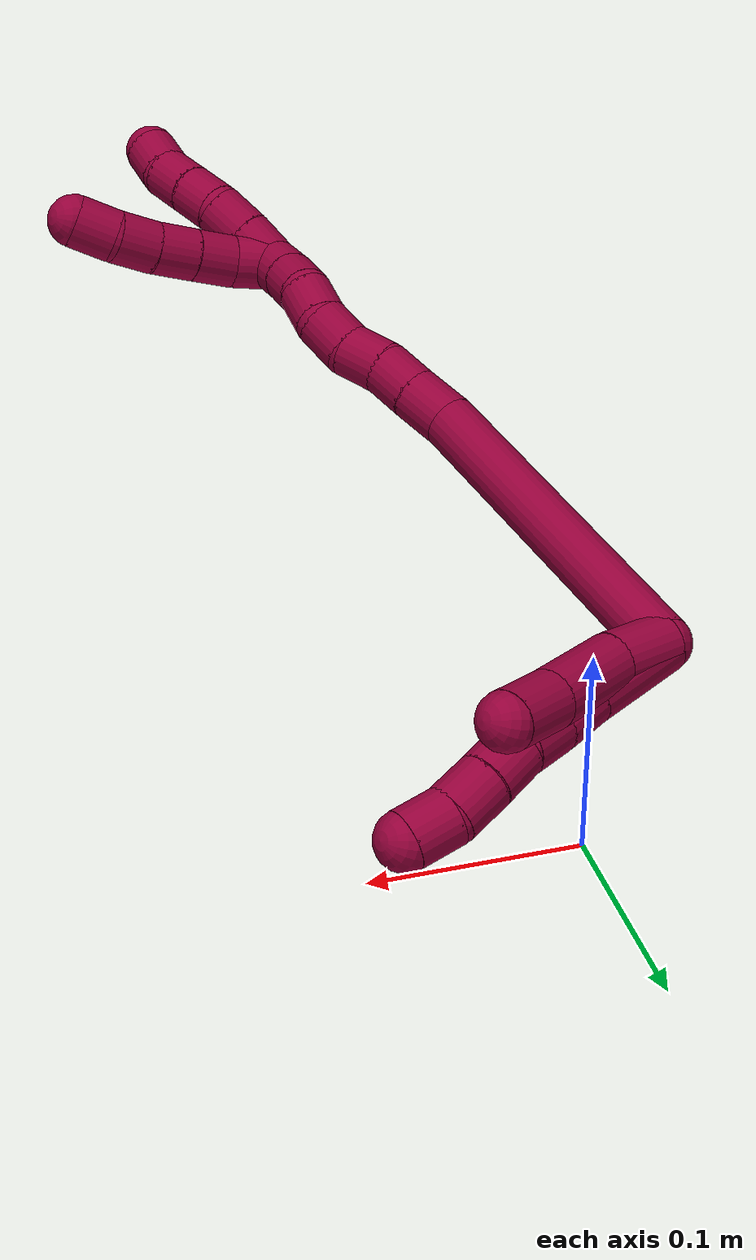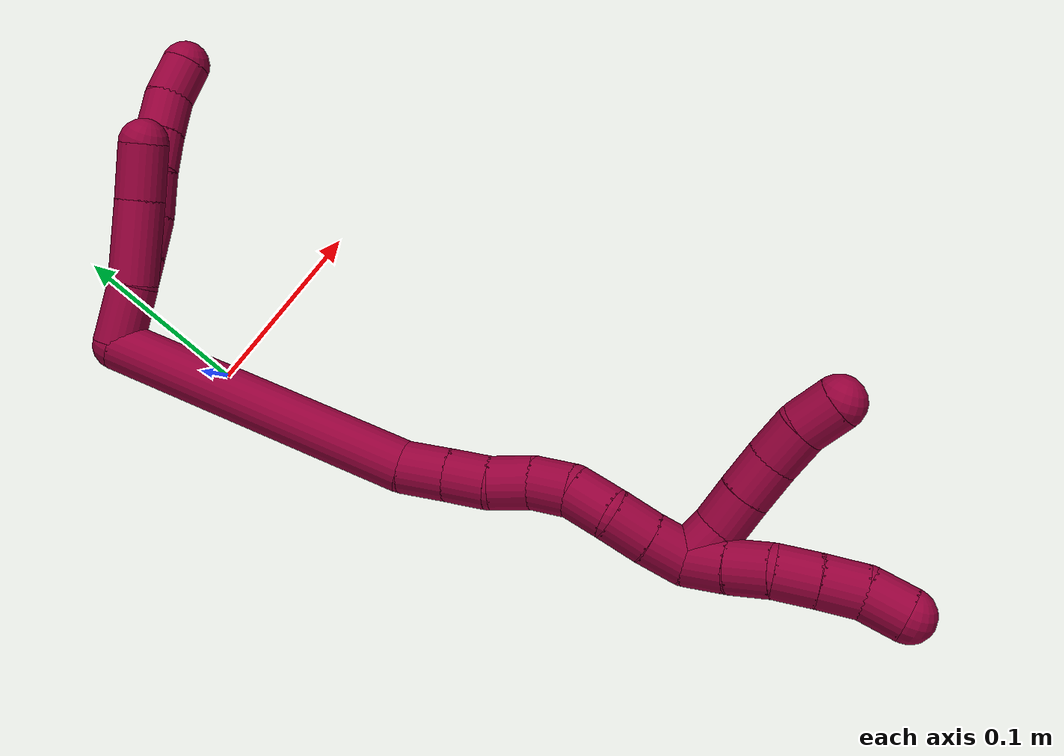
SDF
<sdf version="1.7">
 <world name="default">
  <model name="8">
   <static>0</static>
   <link name="8">
    <collision name="collision-cylinder-e_1_2_8">
     <pose>0.010368 0.004221 0.019769 -0.210367 0.473905 -0.050978</pose>
     <geometry><cylinder><radius>0.0125</radius><length>0.045438</length></cylinder></geometry>
     <surface>
      <friction><ode><mu>1.16</mu><mu2>1.16</mu2><slip1>0</slip1><slip2>0</slip2></ode></friction>
      <contact><ode><kp>1e+06</kp><kd>1</kd><max_vel>0</max_vel><min_depth>0.001</min_depth></ode></contact>
     </surface>
    </collision>
    <visual name="visual-cylinder-e_1_2_8">
     <pose>0.010368 0.004221 0.019769 -0.210367 0.473905 -0.050978</pose>
     <geometry><cylinder><radius>0.0125</radius><length>0.045438</length></cylinder></geometry>
     <material><ambient>0.584314 0 0.227451 1</ambient></material>
    </visual>
    <collision name="collision-cylinder-e_2_8_9">
     <pose>0.02608 0.010693 0.048219 -0.253631 0.53739 -0.070186</pose>
     <geometry><cylinder><radius>0.0125</radius><length>0.020878</length></cylinder></geometry>
     <surface>
      <friction><ode><mu>1.16</mu><mu2>1.16</mu2><slip1>0</slip1><slip2>0</slip2></ode></friction>
      <contact><ode><kp>1e+06</kp><kd>1</kd><max_vel>0</max_vel><min_depth>0.001</min_depth></ode></contact>
     </surface>
    </collision>
    <visual name="visual-cylinder-e_2_8_9">
     <pose>0.02608 0.010693 0.048219 -0.253631 0.53739 -0.070186</pose>
     <geometry><cylinder><radius>0.0125</radius><length>0.020878</length></cylinder></geometry>
     <material><ambient>0.584314 0 0.227451 1</ambient></material>
    </visual>
    <collision name="collision-cylinder-e_3_9_10">
     <pose>0.034757 0.016322 0.067324 -0.313443 0.295335 -0.047002</pose>
     <geometry><cylinder><radius>0.0125</radius><length>0.022909</length></cylinder></geometry>
     <surface>
      <friction><ode><mu>1.16</mu><mu2>1.16</mu2><slip1>0</slip1><slip2>0</slip2></ode></friction>
      <contact><ode><kp>1e+06</kp><kd>1</kd><max_vel>0</max_vel><min_depth>0.001</min_depth></ode></contact>
     </surface>
    </collision>
    <visual name="visual-cylinder-e_3_9_10">
     <pose>0.034757 0.016322 0.067324 -0.313443 0.295335 -0.047002</pose>
     <geometry><cylinder><radius>0.0125</radius><length>0.022909</length></cylinder></geometry>
     <material><ambient>0.584314 0 0.227451 1</ambient></material>
    </visual>
    <collision name="collision-cylinder-e_4_10_11">
     <pose>0.043649 0.02258 0.085552 -0.35356 0.589058 -0.108279</pose>
     <geometry><cylinder><radius>0.0125</radius><length>0.020007</length></cylinder></geometry>
     <surface>
      <friction><ode><mu>1.16</mu><mu2>1.16</mu2><slip1>0</slip1><slip2>0</slip2></ode></friction>
      <contact><ode><kp>1e+06</kp><kd>1</kd><max_vel>0</max_vel><min_depth>0.001</min_depth></ode></contact>
     </surface>
    </collision>
    <visual name="visual-cylinder-e_4_10_11">
     <pose>0.043649 0.02258 0.085552 -0.35356 0.589058 -0.108279</pose>
     <geometry><cylinder><radius>0.0125</radius><length>0.020007</length></cylinder></geometry>
     <material><ambient>0.584314 0 0.227451 1</ambient></material>
    </visual>
    <collision name="collision-cylinder-e_5_11_12">
     <pose>0.055298 0.027885 0.101384 -0.293249 0.628151 -0.09587</pose>
     <geometry><cylinder><radius>0.0125</radius><length>0.02073</length></cylinder></geometry>
     <surface>
      <friction><ode><mu>1.16</mu><mu2>1.16</mu2><slip1>0</slip1><slip2>0</slip2></ode></friction>
      <contact><ode><kp>1e+06</kp><kd>1</kd><max_vel>0</max_vel><min_depth>0.001</min_depth></ode></contact>
     </surface>
    </collision>
    <visual name="visual-cylinder-e_5_11_12">
     <pose>0.055298 0.027885 0.101384 -0.293249 0.628151 -0.09587</pose>
     <geometry><cylinder><radius>0.0125</radius><length>0.02073</length></cylinder></geometry>
     <material><ambient>0.584314 0 0.227451 1</ambient></material>
    </visual>
    <collision name="collision-cylinder-e_6_12_6">
     <pose>0.066897 0.030322 0.117782 -0.001551 0.582113 -0.000464</pose>
     <geometry><cylinder><radius>0.0125</radius><length>0.020038</length></cylinder></geometry>
     <surface>
      <friction><ode><mu>1.16</mu><mu2>1.16</mu2><slip1>0</slip1><slip2>0</slip2></ode></friction>
      <contact><ode><kp>1e+06</kp><kd>1</kd><max_vel>0</max_vel><min_depth>0.001</min_depth></ode></contact>
     </surface>
    </collision>
    <visual name="visual-cylinder-e_6_12_6">
     <pose>0.066897 0.030322 0.117782 -0.001551 0.582113 -0.000464</pose>
     <geometry><cylinder><radius>0.0125</radius><length>0.020038</length></cylinder></geometry>
     <material><ambient>0.584314 0 0.227451 1</ambient></material>
    </visual>
    <collision name="collision-cylinder-e_1_2_13">
     <pose>0.004013 0.001706 0.014507 -0.117095 0.26812 -0.01581</pose>
     <geometry><cylinder><radius>0.0125</radius><length>0.030296</length></cylinder></geometry>
     <surface>
      <friction><ode><mu>1.16</mu><mu2>1.16</mu2><slip1>0</slip1><slip2>0</slip2></ode></friction>
      <contact><ode><kp>1e+06</kp><kd>1</kd><max_vel>0</max_vel><min_depth>0.001</min_depth></ode></contact>
     </surface>
    </collision>
    <visual name="visual-cylinder-e_1_2_13">
     <pose>0.004013 0.001706 0.014507 -0.117095 0.26812 -0.01581</pose>
     <geometry><cylinder><radius>0.0125</radius><length>0.030296</length></cylinder></geometry>
     <material><ambient>0.584314 0 0.227451 1</ambient></material>
    </visual>
    <collision name="collision-cylinder-e_2_13_14">
     <pose>0.013202 0.00927 0.048364 -0.29393 0.250639 -0.037294</pose>
     <geometry><cylinder><radius>0.0125</radius><length>0.041738</length></cylinder></geometry>
     <surface>
      <friction><ode><mu>1.16</mu><mu2>1.16</mu2><slip1>0</slip1><slip2>0</slip2></ode></friction>
      <contact><ode><kp>1e+06</kp><kd>1</kd><max_vel>0</max_vel><min_depth>0.001</min_depth></ode></contact>
     </surface>
    </collision>
    <visual name="visual-cylinder-e_2_13_14">
     <pose>0.013202 0.00927 0.048364 -0.29393 0.250639 -0.037294</pose>
     <geometry><cylinder><radius>0.0125</radius><length>0.041738</length></cylinder></geometry>
     <material><ambient>0.584314 0 0.227451 1</ambient></material>
    </visual>
    <collision name="collision-cylinder-e_3_14_5">
     <pose>0.020878 0.018927 0.080936 -0.279823 0.179765 -0.025384</pose>
     <geometry><cylinder><radius>0.0125</radius><length>0.027966</length></cylinder></geometry>
     <surface>
      <friction><ode><mu>1.16</mu><mu2>1.16</mu2><slip1>0</slip1><slip2>0</slip2></ode></friction>
      <contact><ode><kp>1e+06</kp><kd>1</kd><max_vel>0</max_vel><min_depth>0.001</min_depth></ode></contact>
     </surface>
    </collision>
    <visual name="visual-cylinder-e_3_14_5">
     <pose>0.020878 0.018927 0.080936 -0.279823 0.179765 -0.025384</pose>
     <geometry><cylinder><radius>0.0125</radius><length>0.027966</length></cylinder></geometry>
     <material><ambient>0.584314 0 0.227451 1</ambient></material>
    </visual>
    <collision name="collision-cylinder-e_1_2_15">
     <pose>-0.007446 -0.078255 0.002331 1.54102 -0.094827 -0.092049</pose>
     <geometry><cylinder><radius>0.0125</radius><length>0.157285</length></cylinder></geometry>
     <surface>
      <friction><ode><mu>1.16</mu><mu2>1.16</mu2><slip1>0</slip1><slip2>0</slip2></ode></friction>
      <contact><ode><kp>1e+06</kp><kd>1</kd><max_vel>0</max_vel><min_depth>0.001</min_depth></ode></contact>
     </surface>
    </collision>
    <visual name="visual-cylinder-e_1_2_15">
     <pose>-0.007446 -0.078255 0.002331 1.54102 -0.094827 -0.092049</pose>
     <geometry><cylinder><radius>0.0125</radius><length>0.157285</length></cylinder></geometry>
     <material><ambient>0.584314 0 0.227451 1</ambient></material>
    </visual>
    <collision name="collision-cylinder-e_2_15_16">
     <pose>-0.015809 -0.16741 0.00756 1.3109 -0.081073 -0.062346</pose>
     <geometry><cylinder><radius>0.0125</radius><length>0.022634</length></cylinder></geometry>
     <surface>
      <friction><ode><mu>1.16</mu><mu2>1.16</mu2><slip1>0</slip1><slip2>0</slip2></ode></friction>
      <contact><ode><kp>1e+06</kp><kd>1</kd><max_vel>0</max_vel><min_depth>0.001</min_depth></ode></contact>
     </surface>
    </collision>
    <visual name="visual-cylinder-e_2_15_16">
     <pose>-0.015809 -0.16741 0.00756 1.3109 -0.081073 -0.062346</pose>
     <geometry><cylinder><radius>0.0125</radius><length>0.022634</length></cylinder></geometry>
     <material><ambient>0.584314 0 0.227451 1</ambient></material>
    </visual>
    <collision name="collision-cylinder-e_3_16_17">
     <pose>-0.017866 -0.187921 0.013 1.31229 -0.114256 -0.08801</pose>
     <geometry><cylinder><radius>0.0125</radius><length>0.020011</length></cylinder></geometry>
     <surface>
      <friction><ode><mu>1.16</mu><mu2>1.16</mu2><slip1>0</slip1><slip2>0</slip2></ode></friction>
      <contact><ode><kp>1e+06</kp><kd>1</kd><max_vel>0</max_vel><min_depth>0.001</min_depth></ode></contact>
     </surface>
    </collision>
    <visual name="visual-cylinder-e_3_16_17">
     <pose>-0.017866 -0.187921 0.013 1.31229 -0.114256 -0.08801</pose>
     <geometry><cylinder><radius>0.0125</radius><length>0.020011</length></cylinder></geometry>
     <material><ambient>0.584314 0 0.227451 1</ambient></material>
    </visual>
    <collision name="collision-cylinder-e_4_17_18">
     <pose>-0.018309 -0.206695 0.019505 1.16249 0.069782 0.045854</pose>
     <geometry><cylinder><radius>0.0125</radius><length>0.020017</length></cylinder></geometry>
     <surface>
      <friction><ode><mu>1.16</mu><mu2>1.16</mu2><slip1>0</slip1><slip2>0</slip2></ode></friction>
      <contact><ode><kp>1e+06</kp><kd>1</kd><max_vel>0</max_vel><min_depth>0.001</min_depth></ode></contact>
     </surface>
    </collision>
    <visual name="visual-cylinder-e_4_17_18">
     <pose>-0.018309 -0.206695 0.019505 1.16249 0.069782 0.045854</pose>
     <geometry><cylinder><radius>0.0125</radius><length>0.020017</length></cylinder></geometry>
     <material><ambient>0.584314 0 0.227451 1</ambient></material>
    </visual>
    <collision name="collision-cylinder-e_5_18_19">
     <pose>-0.019679 -0.225263 0.026178 1.2904 -0.208201 -0.156951</pose>
     <geometry><cylinder><radius>0.0125</radius><length>0.020007</length></cylinder></geometry>
     <surface>
      <friction><ode><mu>1.16</mu><mu2>1.16</mu2><slip1>0</slip1><slip2>0</slip2></ode></friction>
      <contact><ode><kp>1e+06</kp><kd>1</kd><max_vel>0</max_vel><min_depth>0.001</min_depth></ode></contact>
     </surface>
    </collision>
    <visual name="visual-cylinder-e_5_18_19">
     <pose>-0.019679 -0.225263 0.026178 1.2904 -0.208201 -0.156951</pose>
     <geometry><cylinder><radius>0.0125</radius><length>0.020007</length></cylinder></geometry>
     <material><ambient>0.584314 0 0.227451 1</ambient></material>
    </visual>
    <collision name="collision-cylinder-e_6_19_20">
     <pose>-0.024244 -0.244333 0.028261 1.63537 -0.252313 -0.268959</pose>
     <geometry><cylinder><radius>0.0125</radius><length>0.020002</length></cylinder></geometry>
     <surface>
      <friction><ode><mu>1.16</mu><mu2>1.16</mu2><slip1>0</slip1><slip2>0</slip2></ode></friction>
      <contact><ode><kp>1e+06</kp><kd>1</kd><max_vel>0</max_vel><min_depth>0.001</min_depth></ode></contact>
     </surface>
    </collision>
    <visual name="visual-cylinder-e_6_19_20">
     <pose>-0.024244 -0.244333 0.028261 1.63537 -0.252313 -0.268959</pose>
     <geometry><cylinder><radius>0.0125</radius><length>0.020002</length></cylinder></geometry>
     <material><ambient>0.584314 0 0.227451 1</ambient></material>
    </visual>
    <collision name="collision-cylinder-e_7_20_21">
     <pose>-0.026209 -0.263761 0.02545 1.79107 0.053035 0.066214</pose>
     <geometry><cylinder><radius>0.0125</radius><length>0.020039</length></cylinder></geometry>
     <surface>
      <friction><ode><mu>1.16</mu><mu2>1.16</mu2><slip1>0</slip1><slip2>0</slip2></ode></friction>
      <contact><ode><kp>1e+06</kp><kd>1</kd><max_vel>0</max_vel><min_depth>0.001</min_depth></ode></contact>
     </surface>
    </collision>
    <visual name="visual-cylinder-e_7_20_21">
     <pose>-0.026209 -0.263761 0.02545 1.79107 0.053035 0.066214</pose>
     <geometry><cylinder><radius>0.0125</radius><length>0.020039</length></cylinder></geometry>
     <material><ambient>0.584314 0 0.227451 1</ambient></material>
    </visual>
    <collision name="collision-cylinder-e_8_21_1">
     <pose>-0.024788 -0.283348 0.021609 1.73775 0.089131 0.105381</pose>
     <geometry><cylinder><radius>0.0125</radius><length>0.020004</length></cylinder></geometry>
     <surface>
      <friction><ode><mu>1.16</mu><mu2>1.16</mu2><slip1>0</slip1><slip2>0</slip2></ode></friction>
      <contact><ode><kp>1e+06</kp><kd>1</kd><max_vel>0</max_vel><min_depth>0.001</min_depth></ode></contact>
     </surface>
    </collision>
    <visual name="visual-cylinder-e_8_21_1">
     <pose>-0.024788 -0.283348 0.021609 1.73775 0.089131 0.105381</pose>
     <geometry><cylinder><radius>0.0125</radius><length>0.020004</length></cylinder></geometry>
     <material><ambient>0.584314 0 0.227451 1</ambient></material>
    </visual>
    <collision name="collision-cylinder-e_1_1_22">
     <pose>-0.026611 -0.302164 0.023387 1.206 -0.274837 -0.189866</pose>
     <geometry><cylinder><radius>0.0125</radius><length>0.02</length></cylinder></geometry>
     <surface>
      <friction><ode><mu>1.16</mu><mu2>1.16</mu2><slip1>0</slip1><slip2>0</slip2></ode></friction>
      <contact><ode><kp>1e+06</kp><kd>1</kd><max_vel>0</max_vel><min_depth>0.001</min_depth></ode></contact>
     </surface>
    </collision>
    <visual name="visual-cylinder-e_1_1_22">
     <pose>-0.026611 -0.302164 0.023387 1.206 -0.274837 -0.189866</pose>
     <geometry><cylinder><radius>0.0125</radius><length>0.02</length></cylinder></geometry>
     <material><ambient>0.584314 0 0.227451 1</ambient></material>
    </visual>
    <collision name="collision-cylinder-e_2_22_23">
     <pose>-0.031394 -0.3201 0.030785 1.1536 -0.208347 -0.135835</pose>
     <geometry><cylinder><radius>0.0125</radius><length>0.02</length></cylinder></geometry>
     <surface>
      <friction><ode><mu>1.16</mu><mu2>1.16</mu2><slip1>0</slip1><slip2>0</slip2></ode></friction>
      <contact><ode><kp>1e+06</kp><kd>1</kd><max_vel>0</max_vel><min_depth>0.001</min_depth></ode></contact>
     </surface>
    </collision>
    <visual name="visual-cylinder-e_2_22_23">
     <pose>-0.031394 -0.3201 0.030785 1.1536 -0.208347 -0.135835</pose>
     <geometry><cylinder><radius>0.0125</radius><length>0.02</length></cylinder></geometry>
     <material><ambient>0.584314 0 0.227451 1</ambient></material>
    </visual>
    <collision name="collision-cylinder-e_3_23_24">
     <pose>-0.033505 -0.338859 0.036664 1.3781 -0.004285 -0.00353</pose>
     <geometry><cylinder><radius>0.0125</radius><length>0.02</length></cylinder></geometry>
     <surface>
      <friction><ode><mu>1.16</mu><mu2>1.16</mu2><slip1>0</slip1><slip2>0</slip2></ode></friction>
      <contact><ode><kp>1e+06</kp><kd>1</kd><max_vel>0</max_vel><min_depth>0.001</min_depth></ode></contact>
     </surface>
    </collision>
    <visual name="visual-cylinder-e_3_23_24">
     <pose>-0.033505 -0.338859 0.036664 1.3781 -0.004285 -0.00353</pose>
     <geometry><cylinder><radius>0.0125</radius><length>0.02</length></cylinder></geometry>
     <material><ambient>0.584314 0 0.227451 1</ambient></material>
    </visual>
    <collision name="collision-cylinder-e_4_24_25">
     <pose>-0.033441 -0.358556 0.040106 1.41751 0.010694 0.009168</pose>
     <geometry><cylinder><radius>0.0125</radius><length>0.02</length></cylinder></geometry>
     <surface>
      <friction><ode><mu>1.16</mu><mu2>1.16</mu2><slip1>0</slip1><slip2>0</slip2></ode></friction>
      <contact><ode><kp>1e+06</kp><kd>1</kd><max_vel>0</max_vel><min_depth>0.001</min_depth></ode></contact>
     </surface>
    </collision>
    <visual name="visual-cylinder-e_4_24_25">
     <pose>-0.033441 -0.358556 0.040106 1.41751 0.010694 0.009168</pose>
     <geometry><cylinder><radius>0.0125</radius><length>0.02</length></cylinder></geometry>
     <material><ambient>0.584314 0 0.227451 1</ambient></material>
    </visual>
    <collision name="collision-cylinder-e_5_25_4">
     <pose>-0.034945 -0.378296 0.041156 1.61915 -0.161771 -0.169752</pose>
     <geometry><cylinder><radius>0.0125</radius><length>0.02</length></cylinder></geometry>
     <surface>
      <friction><ode><mu>1.16</mu><mu2>1.16</mu2><slip1>0</slip1><slip2>0</slip2></ode></friction>
      <contact><ode><kp>1e+06</kp><kd>1</kd><max_vel>0</max_vel><min_depth>0.001</min_depth></ode></contact>
     </surface>
    </collision>
    <visual name="visual-cylinder-e_5_25_4">
     <pose>-0.034945 -0.378296 0.041156 1.61915 -0.161771 -0.169752</pose>
     <geometry><cylinder><radius>0.0125</radius><length>0.02</length></cylinder></geometry>
     <material><ambient>0.584314 0 0.227451 1</ambient></material>
    </visual>
    <collision name="collision-cylinder-e_1_1_26">
     <pose>-0.021224 -0.297109 0.028748 0.420842 0.270645 0.058144</pose>
     <geometry><cylinder><radius>0.0125</radius><length>0.02</length></cylinder></geometry>
     <surface>
      <friction><ode><mu>1.16</mu><mu2>1.16</mu2><slip1>0</slip1><slip2>0</slip2></ode></friction>
      <contact><ode><kp>1e+06</kp><kd>1</kd><max_vel>0</max_vel><min_depth>0.001</min_depth></ode></contact>
     </surface>
    </collision>
    <visual name="visual-cylinder-e_1_1_26">
     <pose>-0.021224 -0.297109 0.028748 0.420842 0.270645 0.058144</pose>
     <geometry><cylinder><radius>0.0125</radius><length>0.02</length></cylinder></geometry>
     <material><ambient>0.584314 0 0.227451 1</ambient></material>
    </visual>
    <collision name="collision-cylinder-e_2_26_27">
     <pose>-0.017672 -0.303513 0.047194 0.250309 0.087967 0.011074</pose>
     <geometry><cylinder><radius>0.0125</radius><length>0.02</length></cylinder></geometry>
     <surface>
      <friction><ode><mu>1.16</mu><mu2>1.16</mu2><slip1>0</slip1><slip2>0</slip2></ode></friction>
      <contact><ode><kp>1e+06</kp><kd>1</kd><max_vel>0</max_vel><min_depth>0.001</min_depth></ode></contact>
     </surface>
    </collision>
    <visual name="visual-cylinder-e_2_26_27">
     <pose>-0.017672 -0.303513 0.047194 0.250309 0.087967 0.011074</pose>
     <geometry><cylinder><radius>0.0125</radius><length>0.02</length></cylinder></geometry>
     <material><ambient>0.584314 0 0.227451 1</ambient></material>
    </visual>
    <collision name="collision-cylinder-e_3_27_28">
     <pose>-0.015922 -0.308685 0.066433 0.274957 0.087257 0.01208</pose>
     <geometry><cylinder><radius>0.0125</radius><length>0.02</length></cylinder></geometry>
     <surface>
      <friction><ode><mu>1.16</mu><mu2>1.16</mu2><slip1>0</slip1><slip2>0</slip2></ode></friction>
      <contact><ode><kp>1e+06</kp><kd>1</kd><max_vel>0</max_vel><min_depth>0.001</min_depth></ode></contact>
     </surface>
    </collision>
    <visual name="visual-cylinder-e_3_27_28">
     <pose>-0.015922 -0.308685 0.066433 0.274957 0.087257 0.01208</pose>
     <geometry><cylinder><radius>0.0125</radius><length>0.02</length></cylinder></geometry>
     <material><ambient>0.584314 0 0.227451 1</ambient></material>
    </visual>
    <collision name="collision-cylinder-e_4_28_29">
     <pose>-0.01506 -0.314385 0.085562 0.304213 -0.000972 -0.000149</pose>
     <geometry><cylinder><radius>0.0125</radius><length>0.02</length></cylinder></geometry>
     <surface>
      <friction><ode><mu>1.16</mu><mu2>1.16</mu2><slip1>0</slip1><slip2>0</slip2></ode></friction>
      <contact><ode><kp>1e+06</kp><kd>1</kd><max_vel>0</max_vel><min_depth>0.001</min_depth></ode></contact>
     </surface>
    </collision>
    <visual name="visual-cylinder-e_4_28_29">
     <pose>-0.01506 -0.314385 0.085562 0.304213 -0.000972 -0.000149</pose>
     <geometry><cylinder><radius>0.0125</radius><length>0.02</length></cylinder></geometry>
     <material><ambient>0.584314 0 0.227451 1</ambient></material>
    </visual>
    <collision name="collision-cylinder-e_5_29_3">
     <pose>-0.0153 -0.322504 0.103687 0.538066 -0.023001 -0.006342</pose>
     <geometry><cylinder><radius>0.0125</radius><length>0.02</length></cylinder></geometry>
     <surface>
      <friction><ode><mu>1.16</mu><mu2>1.16</mu2><slip1>0</slip1><slip2>0</slip2></ode></friction>
      <contact><ode><kp>1e+06</kp><kd>1</kd><max_vel>0</max_vel><min_depth>0.001</min_depth></ode></contact>
     </surface>
    </collision>
    <visual name="visual-cylinder-e_5_29_3">
     <pose>-0.0153 -0.322504 0.103687 0.538066 -0.023001 -0.006342</pose>
     <geometry><cylinder><radius>0.0125</radius><length>0.02</length></cylinder></geometry>
     <material><ambient>0.584314 0 0.227451 1</ambient></material>
    </visual>
    <collision name="collision-sphere-3">
     <pose>-0.01553 -0.327628 0.112272 0 -0 0</pose>
     <geometry><sphere><radius>0.0125</radius></sphere></geometry>
     <surface>
      <friction><ode><mu>1.16</mu><mu2>1.16</mu2><slip1>0</slip1><slip2>0</slip2></ode></friction>
      <contact><ode><kp>1e+06</kp><kd>1</kd><max_vel>0</max_vel><min_depth>0.001</min_depth></ode></contact>
     </surface>
    </collision>
    <visual name="visual-sphere-3">
     <pose>-0.01553 -0.327628 0.112272 0 -0 0</pose>
     <geometry><sphere><radius>0.0125</radius></sphere></geometry>
     <material><ambient>0.584314 0 0.227451 1</ambient></material>
    </visual>
    <collision name="collision-sphere-29">
     <pose>-0.01507 -0.317381 0.095102 0 -0 0</pose>
     <geometry><sphere><radius>0.0125</radius></sphere></geometry>
     <surface>
      <friction><ode><mu>1.16</mu><mu2>1.16</mu2><slip1>0</slip1><slip2>0</slip2></ode></friction>
      <contact><ode><kp>1e+06</kp><kd>1</kd><max_vel>0</max_vel><min_depth>0.001</min_depth></ode></contact>
     </surface>
    </collision>
    <visual name="visual-sphere-29">
     <pose>-0.01507 -0.317381 0.095102 0 -0 0</pose>
     <geometry><sphere><radius>0.0125</radius></sphere></geometry>
     <material><ambient>0.584314 0 0.227451 1</ambient></material>
    </visual>
    <collision name="collision-sphere-28">
     <pose>-0.01505 -0.31139 0.076021 0 -0 0</pose>
     <geometry><sphere><radius>0.0125</radius></sphere></geometry>
     <surface>
      <friction><ode><mu>1.16</mu><mu2>1.16</mu2><slip1>0</slip1><slip2>0</slip2></ode></friction>
      <contact><ode><kp>1e+06</kp><kd>1</kd><max_vel>0</max_vel><min_depth>0.001</min_depth></ode></contact>
     </surface>
    </collision>
    <visual name="visual-sphere-28">
     <pose>-0.01505 -0.31139 0.076021 0 -0 0</pose>
     <geometry><sphere><radius>0.0125</radius></sphere></geometry>
     <material><ambient>0.584314 0 0.227451 1</ambient></material>
    </visual>
    <collision name="collision-sphere-27">
     <pose>-0.016793 -0.30598 0.056845 0 -0 0</pose>
     <geometry><sphere><radius>0.0125</radius></sphere></geometry>
     <surface>
      <friction><ode><mu>1.16</mu><mu2>1.16</mu2><slip1>0</slip1><slip2>0</slip2></ode></friction>
      <contact><ode><kp>1e+06</kp><kd>1</kd><max_vel>0</max_vel><min_depth>0.001</min_depth></ode></contact>
     </surface>
    </collision>
    <visual name="visual-sphere-27">
     <pose>-0.016793 -0.30598 0.056845 0 -0 0</pose>
     <geometry><sphere><radius>0.0125</radius></sphere></geometry>
     <material><ambient>0.584314 0 0.227451 1</ambient></material>
    </visual>
    <collision name="collision-sphere-26">
     <pose>-0.01855 -0.301046 0.037543 0 -0 0</pose>
     <geometry><sphere><radius>0.0125</radius></sphere></geometry>
     <surface>
      <friction><ode><mu>1.16</mu><mu2>1.16</mu2><slip1>0</slip1><slip2>0</slip2></ode></friction>
      <contact><ode><kp>1e+06</kp><kd>1</kd><max_vel>0</max_vel><min_depth>0.001</min_depth></ode></contact>
     </surface>
    </collision>
    <visual name="visual-sphere-26">
     <pose>-0.01855 -0.301046 0.037543 0 -0 0</pose>
     <geometry><sphere><radius>0.0125</radius></sphere></geometry>
     <material><ambient>0.584314 0 0.227451 1</ambient></material>
    </visual>
    <collision name="collision-sphere-4">
     <pose>-0.036555 -0.388154 0.040679 0 -0 0</pose>
     <geometry><sphere><radius>0.0125</radius></sphere></geometry>
     <surface>
      <friction><ode><mu>1.16</mu><mu2>1.16</mu2><slip1>0</slip1><slip2>0</slip2></ode></friction>
      <contact><ode><kp>1e+06</kp><kd>1</kd><max_vel>0</max_vel><min_depth>0.001</min_depth></ode></contact>
     </surface>
    </collision>
    <visual name="visual-sphere-4">
     <pose>-0.036555 -0.388154 0.040679 0 -0 0</pose>
     <geometry><sphere><radius>0.0125</radius></sphere></geometry>
     <material><ambient>0.584314 0 0.227451 1</ambient></material>
    </visual>
    <collision name="collision-sphere-25">
     <pose>-0.033334 -0.368438 0.041633 0 -0 0</pose>
     <geometry><sphere><radius>0.0125</radius></sphere></geometry>
     <surface>
      <friction><ode><mu>1.16</mu><mu2>1.16</mu2><slip1>0</slip1><slip2>0</slip2></ode></friction>
      <contact><ode><kp>1e+06</kp><kd>1</kd><max_vel>0</max_vel><min_depth>0.001</min_depth></ode></contact>
     </surface>
    </collision>
    <visual name="visual-sphere-25">
     <pose>-0.033334 -0.368438 0.041633 0 -0 0</pose>
     <geometry><sphere><radius>0.0125</radius></sphere></geometry>
     <material><ambient>0.584314 0 0.227451 1</ambient></material>
    </visual>
    <collision name="collision-sphere-24">
     <pose>-0.033548 -0.348674 0.038579 0 -0 0</pose>
     <geometry><sphere><radius>0.0125</radius></sphere></geometry>
     <surface>
      <friction><ode><mu>1.16</mu><mu2>1.16</mu2><slip1>0</slip1><slip2>0</slip2></ode></friction>
      <contact><ode><kp>1e+06</kp><kd>1</kd><max_vel>0</max_vel><min_depth>0.001</min_depth></ode></contact>
     </surface>
    </collision>
    <visual name="visual-sphere-24">
     <pose>-0.033548 -0.348674 0.038579 0 -0 0</pose>
     <geometry><sphere><radius>0.0125</radius></sphere></geometry>
     <material><ambient>0.584314 0 0.227451 1</ambient></material>
    </visual>
    <collision name="collision-sphere-23">
     <pose>-0.033462 -0.329044 0.034749 0 -0 0</pose>
     <geometry><sphere><radius>0.0125</radius></sphere></geometry>
     <surface>
      <friction><ode><mu>1.16</mu><mu2>1.16</mu2><slip1>0</slip1><slip2>0</slip2></ode></friction>
      <contact><ode><kp>1e+06</kp><kd>1</kd><max_vel>0</max_vel><min_depth>0.001</min_depth></ode></contact>
     </surface>
    </collision>
    <visual name="visual-sphere-23">
     <pose>-0.033462 -0.329044 0.034749 0 -0 0</pose>
     <geometry><sphere><radius>0.0125</radius></sphere></geometry>
     <material><ambient>0.584314 0 0.227451 1</ambient></material>
    </visual>
    <collision name="collision-sphere-22">
     <pose>-0.029325 -0.311155 0.026821 0 -0 0</pose>
     <geometry><sphere><radius>0.0125</radius></sphere></geometry>
     <surface>
      <friction><ode><mu>1.16</mu><mu2>1.16</mu2><slip1>0</slip1><slip2>0</slip2></ode></friction>
      <contact><ode><kp>1e+06</kp><kd>1</kd><max_vel>0</max_vel><min_depth>0.001</min_depth></ode></contact>
     </surface>
    </collision>
    <visual name="visual-sphere-22">
     <pose>-0.029325 -0.311155 0.026821 0 -0 0</pose>
     <geometry><sphere><radius>0.0125</radius></sphere></geometry>
     <material><ambient>0.584314 0 0.227451 1</ambient></material>
    </visual>
    <collision name="collision-sphere-1">
     <pose>-0.023897 -0.293172 0.019953 0 -0 0</pose>
     <geometry><sphere><radius>0.0125</radius></sphere></geometry>
     <surface>
      <friction><ode><mu>1.16</mu><mu2>1.16</mu2><slip1>0</slip1><slip2>0</slip2></ode></friction>
      <contact><ode><kp>1e+06</kp><kd>1</kd><max_vel>0</max_vel><min_depth>0.001</min_depth></ode></contact>
     </surface>
    </collision>
    <visual name="visual-sphere-1">
     <pose>-0.023897 -0.293172 0.019953 0 -0 0</pose>
     <geometry><sphere><radius>0.0125</radius></sphere></geometry>
     <material><ambient>0.584314 0 0.227451 1</ambient></material>
    </visual>
    <collision name="collision-sphere-21">
     <pose>-0.025678 -0.273525 0.023264 0 -0 0</pose>
     <geometry><sphere><radius>0.0125</radius></sphere></geometry>
     <surface>
      <friction><ode><mu>1.16</mu><mu2>1.16</mu2><slip1>0</slip1><slip2>0</slip2></ode></friction>
      <contact><ode><kp>1e+06</kp><kd>1</kd><max_vel>0</max_vel><min_depth>0.001</min_depth></ode></contact>
     </surface>
    </collision>
    <visual name="visual-sphere-21">
     <pose>-0.025678 -0.273525 0.023264 0 -0 0</pose>
     <geometry><sphere><radius>0.0125</radius></sphere></geometry>
     <material><ambient>0.584314 0 0.227451 1</ambient></material>
    </visual>
    <collision name="collision-sphere-12">
     <pose>0.061389 0.030309 0.109413 0 -0 0</pose>
     <geometry><sphere><radius>0.0125</radius></sphere></geometry>
     <surface>
      <friction><ode><mu>1.16</mu><mu2>1.16</mu2><slip1>0</slip1><slip2>0</slip2></ode></friction>
      <contact><ode><kp>1e+06</kp><kd>1</kd><max_vel>0</max_vel><min_depth>0.001</min_depth></ode></contact>
     </surface>
    </collision>
    <visual name="visual-sphere-12">
     <pose>0.061389 0.030309 0.109413 0 -0 0</pose>
     <geometry><sphere><radius>0.0125</radius></sphere></geometry>
     <material><ambient>0.584314 0 0.227451 1</ambient></material>
    </visual>
    <collision name="collision-sphere-11">
     <pose>0.049207 0.02546 0.093355 0 -0 0</pose>
     <geometry><sphere><radius>0.0125</radius></sphere></geometry>
     <surface>
      <friction><ode><mu>1.16</mu><mu2>1.16</mu2><slip1>0</slip1><slip2>0</slip2></ode></friction>
      <contact><ode><kp>1e+06</kp><kd>1</kd><max_vel>0</max_vel><min_depth>0.001</min_depth></ode></contact>
     </surface>
    </collision>
    <visual name="visual-sphere-11">
     <pose>0.049207 0.02546 0.093355 0 -0 0</pose>
     <geometry><sphere><radius>0.0125</radius></sphere></geometry>
     <material><ambient>0.584314 0 0.227451 1</ambient></material>
    </visual>
    <collision name="collision-sphere-10">
     <pose>0.038091 0.019701 0.077749 0 -0 0</pose>
     <geometry><sphere><radius>0.0125</radius></sphere></geometry>
     <surface>
      <friction><ode><mu>1.16</mu><mu2>1.16</mu2><slip1>0</slip1><slip2>0</slip2></ode></friction>
      <contact><ode><kp>1e+06</kp><kd>1</kd><max_vel>0</max_vel><min_depth>0.001</min_depth></ode></contact>
     </surface>
    </collision>
    <visual name="visual-sphere-10">
     <pose>0.038091 0.019701 0.077749 0 -0 0</pose>
     <geometry><sphere><radius>0.0125</radius></sphere></geometry>
     <material><ambient>0.584314 0 0.227451 1</ambient></material>
    </visual>
    <collision name="collision-sphere-9">
     <pose>0.031423 0.012943 0.0569 0 -0 0</pose>
     <geometry><sphere><radius>0.0125</radius></sphere></geometry>
     <surface>
      <friction><ode><mu>1.16</mu><mu2>1.16</mu2><slip1>0</slip1><slip2>0</slip2></ode></friction>
      <contact><ode><kp>1e+06</kp><kd>1</kd><max_vel>0</max_vel><min_depth>0.001</min_depth></ode></contact>
     </surface>
    </collision>
    <visual name="visual-sphere-9">
     <pose>0.031423 0.012943 0.0569 0 -0 0</pose>
     <geometry><sphere><radius>0.0125</radius></sphere></geometry>
     <material><ambient>0.584314 0 0.227451 1</ambient></material>
    </visual>
    <collision name="collision-sphere-2">
     <geometry><sphere><radius>0.0125</radius></sphere></geometry>
     <surface>
      <friction><ode><mu>1.16</mu><mu2>1.16</mu2><slip1>0</slip1><slip2>0</slip2></ode></friction>
      <contact><ode><kp>1e+06</kp><kd>1</kd><max_vel>0</max_vel><min_depth>0.001</min_depth></ode></contact>
     </surface>
    </collision>
    <visual name="visual-sphere-2">
     <geometry><sphere><radius>0.0125</radius></sphere></geometry>
     <material><ambient>0.584314 0 0.227451 1</ambient></material>
    </visual>
    <collision name="collision-sphere-19">
     <pose>-0.021747 -0.234669 0.028886 0 -0 0</pose>
     <geometry><sphere><radius>0.0125</radius></sphere></geometry>
     <surface>
      <friction><ode><mu>1.16</mu><mu2>1.16</mu2><slip1>0</slip1><slip2>0</slip2></ode></friction>
      <contact><ode><kp>1e+06</kp><kd>1</kd><max_vel>0</max_vel><min_depth>0.001</min_depth></ode></contact>
     </surface>
    </collision>
    <visual name="visual-sphere-19">
     <pose>-0.021747 -0.234669 0.028886 0 -0 0</pose>
     <geometry><sphere><radius>0.0125</radius></sphere></geometry>
     <material><ambient>0.584314 0 0.227451 1</ambient></material>
    </visual>
    <collision name="collision-sphere-8">
     <pose>0.020736 0.008443 0.039539 0 -0 0</pose>
     <geometry><sphere><radius>0.0125</radius></sphere></geometry>
     <surface>
      <friction><ode><mu>1.16</mu><mu2>1.16</mu2><slip1>0</slip1><slip2>0</slip2></ode></friction>
      <contact><ode><kp>1e+06</kp><kd>1</kd><max_vel>0</max_vel><min_depth>0.001</min_depth></ode></contact>
     </surface>
    </collision>
    <visual name="visual-sphere-8">
     <pose>0.020736 0.008443 0.039539 0 -0 0</pose>
     <geometry><sphere><radius>0.0125</radius></sphere></geometry>
     <material><ambient>0.584314 0 0.227451 1</ambient></material>
    </visual>
    <collision name="collision-sphere-6">
     <pose>0.072406 0.030335 0.126151 0 -0 0</pose>
     <geometry><sphere><radius>0.0125</radius></sphere></geometry>
     <surface>
      <friction><ode><mu>1.16</mu><mu2>1.16</mu2><slip1>0</slip1><slip2>0</slip2></ode></friction>
      <contact><ode><kp>1e+06</kp><kd>1</kd><max_vel>0</max_vel><min_depth>0.001</min_depth></ode></contact>
     </surface>
    </collision>
    <visual name="visual-sphere-6">
     <pose>0.072406 0.030335 0.126151 0 -0 0</pose>
     <geometry><sphere><radius>0.0125</radius></sphere></geometry>
     <material><ambient>0.584314 0 0.227451 1</ambient></material>
    </visual>
    <collision name="collision-sphere-13">
     <pose>0.008026 0.003413 0.029014 0 -0 0</pose>
     <geometry><sphere><radius>0.0125</radius></sphere></geometry>
     <surface>
      <friction><ode><mu>1.16</mu><mu2>1.16</mu2><slip1>0</slip1><slip2>0</slip2></ode></friction>
      <contact><ode><kp>1e+06</kp><kd>1</kd><max_vel>0</max_vel><min_depth>0.001</min_depth></ode></contact>
     </surface>
    </collision>
    <visual name="visual-sphere-13">
     <pose>0.008026 0.003413 0.029014 0 -0 0</pose>
     <geometry><sphere><radius>0.0125</radius></sphere></geometry>
     <material><ambient>0.584314 0 0.227451 1</ambient></material>
    </visual>
    <collision name="collision-sphere-14">
     <pose>0.018378 0.015127 0.067714 0 -0 0</pose>
     <geometry><sphere><radius>0.0125</radius></sphere></geometry>
     <surface>
      <friction><ode><mu>1.16</mu><mu2>1.16</mu2><slip1>0</slip1><slip2>0</slip2></ode></friction>
      <contact><ode><kp>1e+06</kp><kd>1</kd><max_vel>0</max_vel><min_depth>0.001</min_depth></ode></contact>
     </surface>
    </collision>
    <visual name="visual-sphere-14">
     <pose>0.018378 0.015127 0.067714 0 -0 0</pose>
     <geometry><sphere><radius>0.0125</radius></sphere></geometry>
     <material><ambient>0.584314 0 0.227451 1</ambient></material>
    </visual>
    <collision name="collision-sphere-5">
     <pose>0.023378 0.022727 0.094158 0 -0 0</pose>
     <geometry><sphere><radius>0.0125</radius></sphere></geometry>
     <surface>
      <friction><ode><mu>1.16</mu><mu2>1.16</mu2><slip1>0</slip1><slip2>0</slip2></ode></friction>
      <contact><ode><kp>1e+06</kp><kd>1</kd><max_vel>0</max_vel><min_depth>0.001</min_depth></ode></contact>
     </surface>
    </collision>
    <visual name="visual-sphere-5">
     <pose>0.023378 0.022727 0.094158 0 -0 0</pose>
     <geometry><sphere><radius>0.0125</radius></sphere></geometry>
     <material><ambient>0.584314 0 0.227451 1</ambient></material>
    </visual>
    <collision name="collision-sphere-15">
     <pose>-0.014893 -0.156509 0.004661 0 -0 0</pose>
     <geometry><sphere><radius>0.0125</radius></sphere></geometry>
     <surface>
      <friction><ode><mu>1.16</mu><mu2>1.16</mu2><slip1>0</slip1><slip2>0</slip2></ode></friction>
      <contact><ode><kp>1e+06</kp><kd>1</kd><max_vel>0</max_vel><min_depth>0.001</min_depth></ode></contact>
     </surface>
    </collision>
    <visual name="visual-sphere-15">
     <pose>-0.014893 -0.156509 0.004661 0 -0 0</pose>
     <geometry><sphere><radius>0.0125</radius></sphere></geometry>
     <material><ambient>0.584314 0 0.227451 1</ambient></material>
    </visual>
    <collision name="collision-sphere-16">
     <pose>-0.016726 -0.178311 0.010459 0 -0 0</pose>
     <geometry><sphere><radius>0.0125</radius></sphere></geometry>
     <surface>
      <friction><ode><mu>1.16</mu><mu2>1.16</mu2><slip1>0</slip1><slip2>0</slip2></ode></friction>
      <contact><ode><kp>1e+06</kp><kd>1</kd><max_vel>0</max_vel><min_depth>0.001</min_depth></ode></contact>
     </surface>
    </collision>
    <visual name="visual-sphere-16">
     <pose>-0.016726 -0.178311 0.010459 0 -0 0</pose>
     <geometry><sphere><radius>0.0125</radius></sphere></geometry>
     <material><ambient>0.584314 0 0.227451 1</ambient></material>
    </visual>
    <collision name="collision-sphere-17">
     <pose>-0.019007 -0.197532 0.015541 0 -0 0</pose>
     <geometry><sphere><radius>0.0125</radius></sphere></geometry>
     <surface>
      <friction><ode><mu>1.16</mu><mu2>1.16</mu2><slip1>0</slip1><slip2>0</slip2></ode></friction>
      <contact><ode><kp>1e+06</kp><kd>1</kd><max_vel>0</max_vel><min_depth>0.001</min_depth></ode></contact>
     </surface>
    </collision>
    <visual name="visual-sphere-17">
     <pose>-0.019007 -0.197532 0.015541 0 -0 0</pose>
     <geometry><sphere><radius>0.0125</radius></sphere></geometry>
     <material><ambient>0.584314 0 0.227451 1</ambient></material>
    </visual>
    <collision name="collision-sphere-18">
     <pose>-0.017611 -0.215858 0.023469 0 -0 0</pose>
     <geometry><sphere><radius>0.0125</radius></sphere></geometry>
     <surface>
      <friction><ode><mu>1.16</mu><mu2>1.16</mu2><slip1>0</slip1><slip2>0</slip2></ode></friction>
      <contact><ode><kp>1e+06</kp><kd>1</kd><max_vel>0</max_vel><min_depth>0.001</min_depth></ode></contact>
     </surface>
    </collision>
    <visual name="visual-sphere-18">
     <pose>-0.017611 -0.215858 0.023469 0 -0 0</pose>
     <geometry><sphere><radius>0.0125</radius></sphere></geometry>
     <material><ambient>0.584314 0 0.227451 1</ambient></material>
    </visual>
    <collision name="collision-sphere-20">
     <pose>-0.02674 -0.253997 0.027637 0 -0 0</pose>
     <geometry><sphere><radius>0.0125</radius></sphere></geometry>
     <surface>
      <friction><ode><mu>1.16</mu><mu2>1.16</mu2><slip1>0</slip1><slip2>0</slip2></ode></friction>
      <contact><ode><kp>1e+06</kp><kd>1</kd><max_vel>0</max_vel><min_depth>0.001</min_depth></ode></contact>
     </surface>
    </collision>
    <visual name="visual-sphere-20">
     <pose>-0.02674 -0.253997 0.027637 0 -0 0</pose>
     <geometry><sphere><radius>0.0125</radius></sphere></geometry>
     <material><ambient>0.584314 0 0.227451 1</ambient></material>
    </visual>
    <inertial>
     <pose>-0.003501 -0.14111 0.036849 0 -0 0</pose>
     <mass>0.75</mass>
     <inertia><ixx>0.000354</ixx><ixy>0</ixy><ixz>0</ixz><iyy>-8e-06</iyy><iyz>0</iyz><izz>0.00039</izz></inertia>
    </inertial>
   </link>
   <pose>-0.014154 0.036583 0.127783 -0.290161 1.16342 0.031652</pose>
  </model>
 </world>
</sdf>
